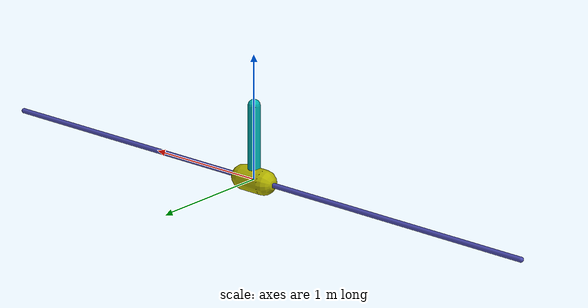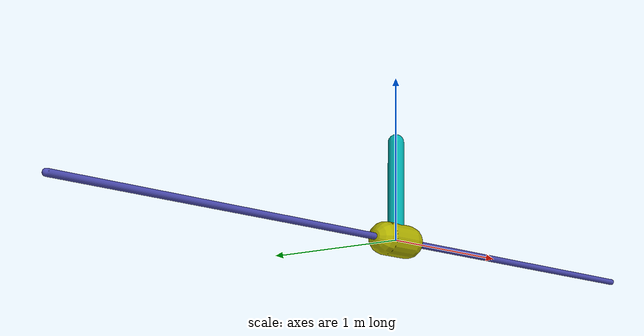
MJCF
<mujoco model="cartpole swingup">
  <!-- Same masses/geometries/transmission as Gymnasium's inverted pendulum.
       Full-rotation hinge; rail extended to [-2.5, 2.5] m for swing-up travel. -->
  <compiler inertiafromgeom="true" angle="degree"/>
  <default>
    <joint armature="0" damping="1" limited="true"/>
    <geom contype="0" friction="1 0.1 0.1" rgba="0.7 0.7 0 1"/>
    <motor ctrlrange="-3 3"/>
  </default>
  <option gravity="0 0 -9.81" integrator="RK4" timestep="0.02"/>
  <worldbody>
    <geom name="rail" pos="0 0 0" quat="0.707 0 0.707 0" rgba="0.3 0.3 0.7 1" size="0.02 2.5" type="capsule"/>
    <body name="cart" pos="0 0 0">
      <joint axis="1 0 0" name="slider" range="-2.5 2.5" type="slide"/>
      <geom name="cart" quat="0.707 0 0.707 0" size="0.1 0.1" type="capsule"/>
      <body name="pole" pos="0 0 0">
        <joint axis="0 1 0" name="hinge" limited="false" type="hinge"/>
        <geom fromto="0 0 0 0.001 0 0.6" name="cpole" rgba="0 0.7 0.7 1" size="0.049 0.3" type="capsule"/>
      </body>
    </body>
  </worldbody>
  <actuator>
    <motor ctrllimited="true" ctrlrange="-3 3" gear="100" joint="slider" name="slide"/>
  </actuator>
</mujoco>
